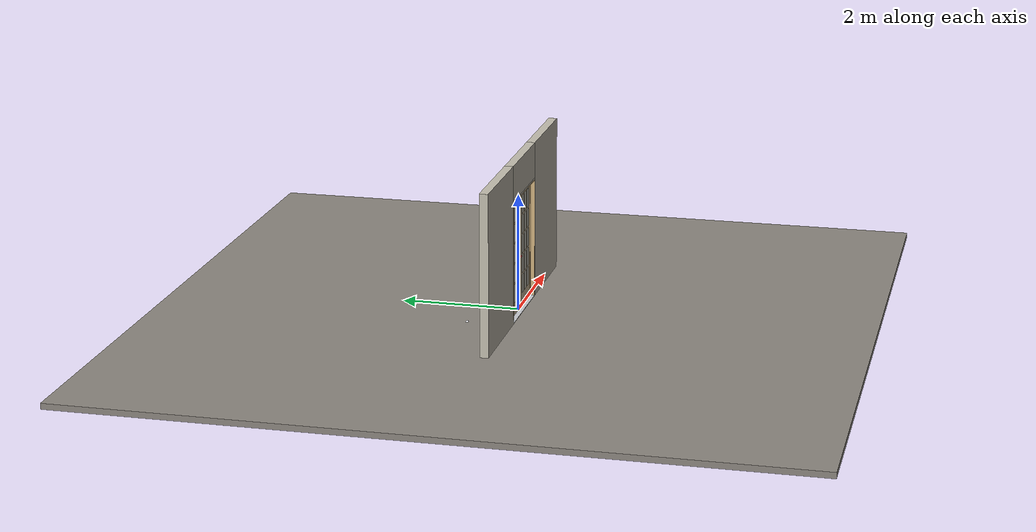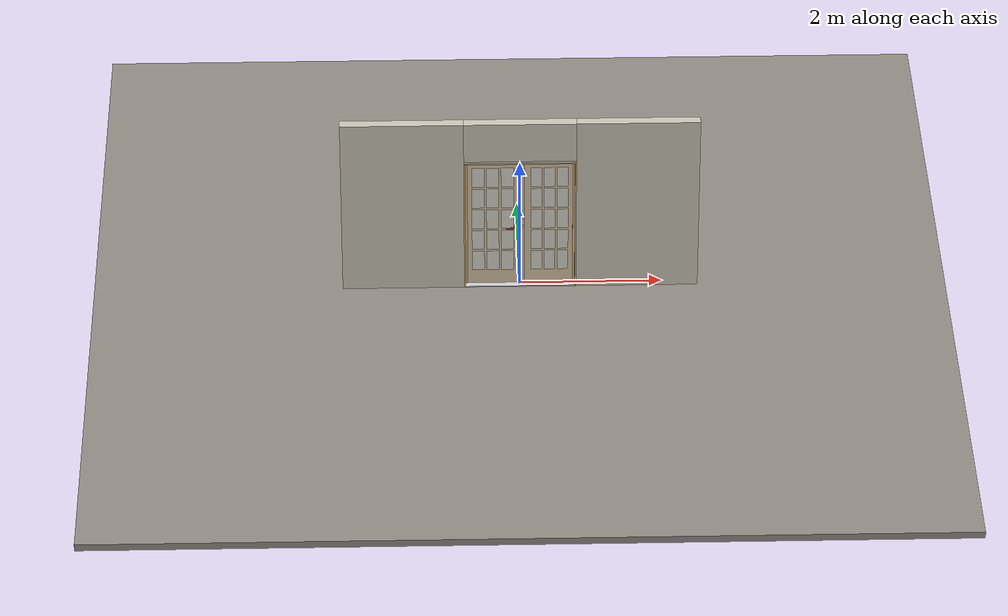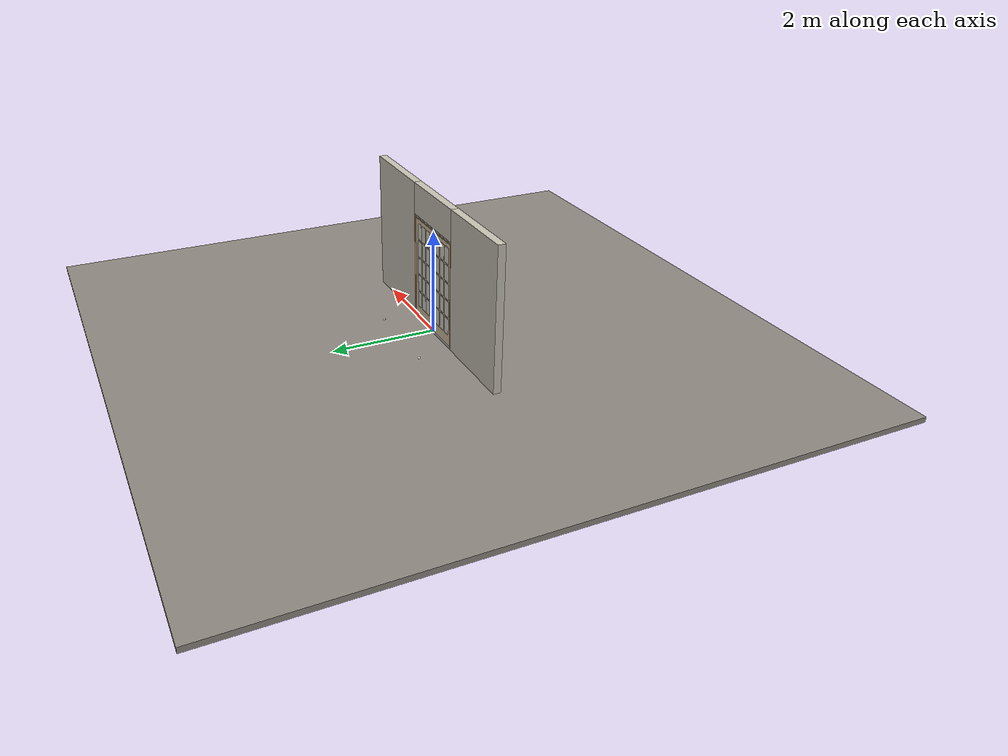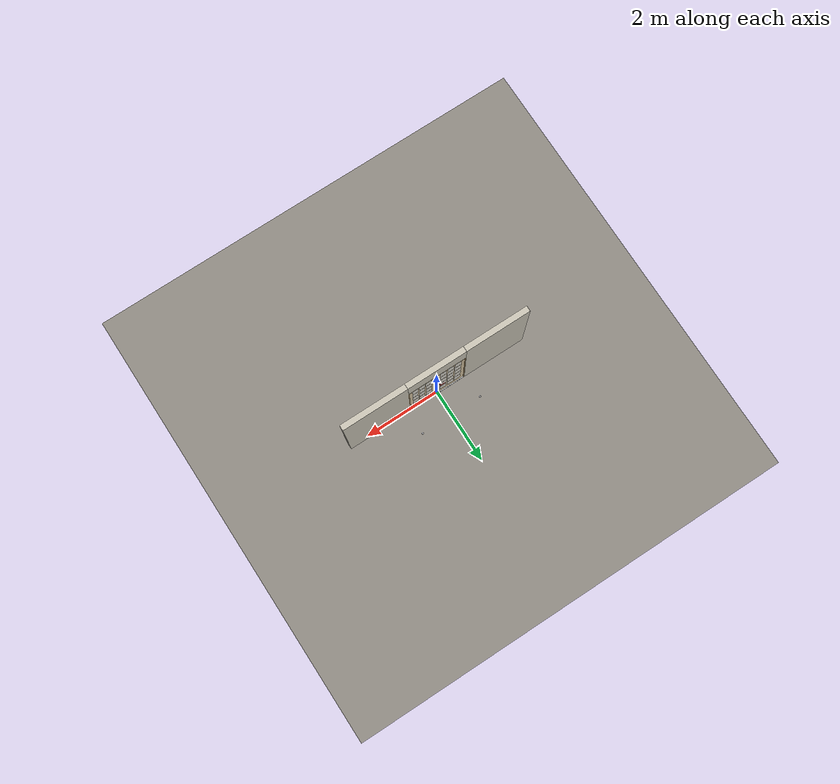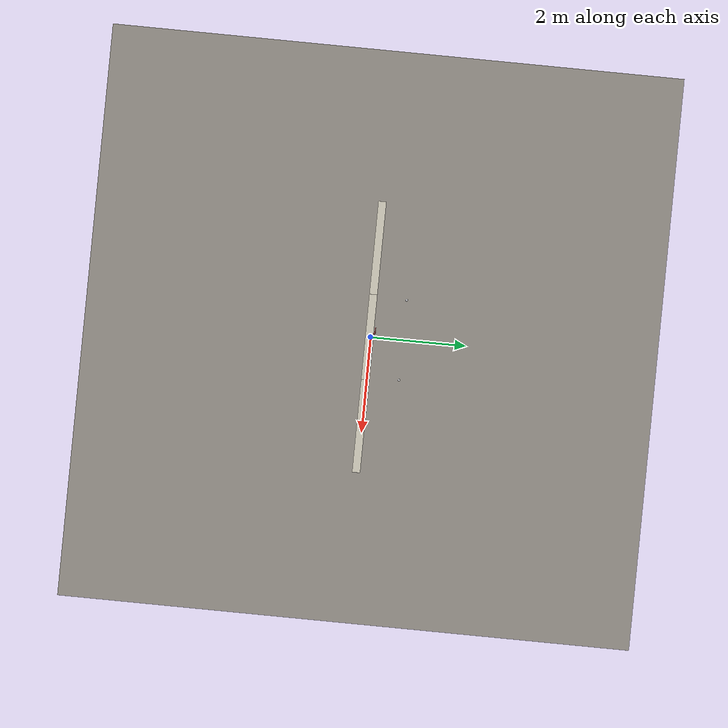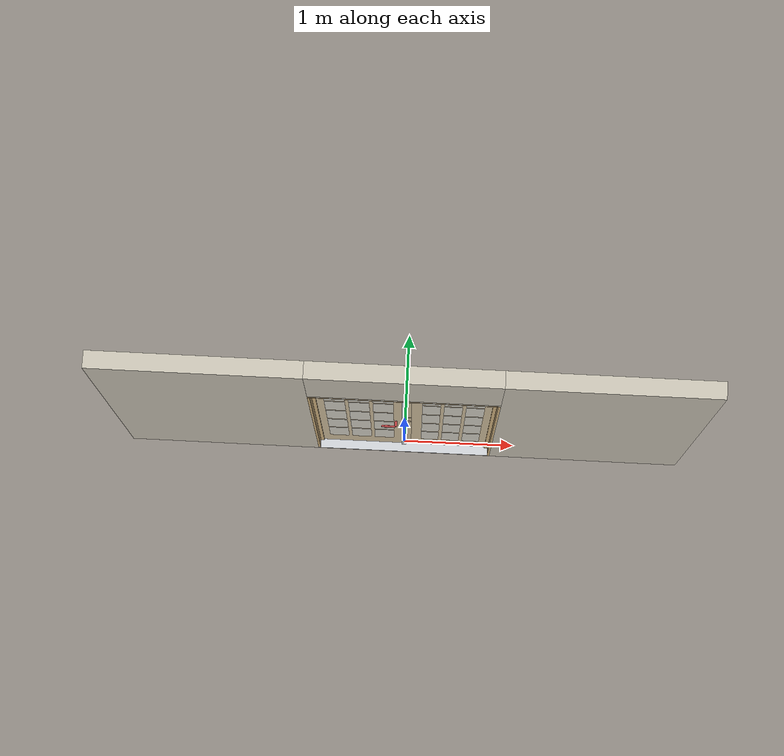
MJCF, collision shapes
<?xml version="1.0" ?>
<mujoco model="db0334_swing_double_full">
  <compiler angle="radian" meshdir="../../hardware" texturedir="../../textures" autolimits="true" inertiafromgeom="false"/>
  <option timestep="0.002" integrator="implicitfast" cone="elliptic" impratio="10" noslip_iterations="3">
    <flag multiccd="enable"/>
  </option>
  <size memory="16M"/>
  <default>
    <geom condim="4" solref="0.005 1" solimp="0.95 0.99 0.001"/>
    <joint solreflimit="0.005 1" solimplimit="0.95 0.99 0.001"/>
    <tendon solreflimit="0.005 1"/>
    <equality solref="0.002 1"/>
  </default>
  <visual>
    <headlight ambient="0.4 0.4 0.4" diffuse="0.7 0.7 0.7" specular="0.2 0.2 0.2"/>
    <quality shadowsize="4096"/>
    <map znear="0.01" zfar="60"/>
  </visual>
  <asset>
    <mesh name="cyl_face_e9e5036966" file="cyl_face_e9e5036966.obj"/>
    <mesh name="hinge_2af0f4d6ca" file="hinge_2af0f4d6ca.obj"/>
    <mesh name="hinge_jamb_c0c0a62ada" file="hinge_jamb_c0c0a62ada.obj"/>
    <mesh name="lever_9f02b544cf" file="lever_9f02b544cf.obj"/>
    <material name="mat_floor" rgba="0.55 0.53 0.5 1" specular="0.2" shininess="0.15" reflectance="0"/>
    <material name="mat_wall" rgba="0.78 0.76 0.7 1" specular="0.2" shininess="0.1" reflectance="0"/>
    <material name="mat_leaf_a" rgba="0.82 0.75 0.62 1" specular="0.2" shininess="0.64" reflectance="0"/>
    <material name="mat_glass" rgba="0.9 0.93 0.95 0.6" specular="0.2" shininess="0.5" reflectance="0.1"/>
    <material name="mat_hinge" rgba="0.65 0.66 0.68 1" specular="0.74" shininess="0.5" reflectance="0.36"/>
    <material name="mat_op_nickel_satin" rgba="0.72 0.7 0.66 1" specular="0.8" shininess="0.65" reflectance="0.4"/>
    <material name="mat_trim" rgba="0.85 0.66 0.3 1" specular="0.8" shininess="0.75" reflectance="0.4"/>
    <material name="mat_bolt" rgba="0.85 0.66 0.3 1" specular="0.8" shininess="0.75" reflectance="0.4"/>
    <material name="mat_deadbolt" rgba="0.85 0.66 0.3 1" specular="0.8" shininess="0.75" reflectance="0.4"/>
    <material name="mat_stop" rgba="0.9 0.9 0.92 1" specular="0.8" shininess="0.9" reflectance="0.4"/>
    <material name="mat_leaf_b" rgba="0.82 0.75 0.62 1" specular="0.2" shininess="0.64" reflectance="0"/>
    <material name="mat_frame" rgba="0.82 0.7 0.5 1" specular="0.2" shininess="0.45" reflectance="0"/>
    <material name="mat_threshold" rgba="0.8 0.81 0.83 1" specular="0.8" shininess="0.6" reflectance="0.4"/>
    <material name="mat_astragal" rgba="0.8 0.81 0.83 1" specular="0.8" shininess="0.6" reflectance="0.4"/>
    <texture name="skybox" type="skybox" builtin="gradient" rgb1="0.6 0.7 0.85" rgb2="0.9 0.92 0.95" width="256" height="256"/>
  </asset>
  <worldbody>
    <light name="sun" pos="1.5 -2.5 4" dir="-0.3 0.5 -0.8" directional="true" diffuse="0.8 0.8 0.8" specular="0.3 0.3 0.3" castshadow="true"/>
    <light name="fill" pos="-1.5 2.5 3" dir="0.3 -0.5 -0.7" directional="true" diffuse="0.35 0.35 0.4" castshadow="false"/>
    <camera name="robot_view" pos="0 -2.572687 1.734312" xyaxes="1 0 0 0 0.26963 0.962964" fovy="52"/>
    <camera name="far_view" pos="0 2.511687 1.734312" xyaxes="-1 0 0 0 -0.26963 0.962964" fovy="52"/>
    <camera name="iso" pos="-1.932062 -2.165938 2.141063" xyaxes="0.741536 -0.670913 0 0.242917 0.268487 0.932151" fovy="46"/>
    <camera name="detail_handle" pos="0.0085 -0.877 1.245" xyaxes="0.97561 0.219512 0 -0.070934 0.315262 0.94635" fovy="38"/>
    <geom name="floor" type="box" size="6 6 0.05" pos="0 0 -0.05" material="mat_floor" group="0" contype="1" conaffinity="1" friction="0.8 0.005 0.0001" density="2400"/>
    <geom name="wall_left" type="box" size="0.85725 0.0725 1.35" pos="-1.64275 -0.0305 1.35" material="mat_wall" group="0" contype="1" conaffinity="1" friction="0.6 0.005 0.0001" density="800"/>
    <geom name="wall_right" type="box" size="0.85725 0.0725 1.35" pos="1.64275 -0.0305 1.35" material="mat_wall" group="0" contype="1" conaffinity="1" friction="0.6 0.005 0.0001" density="800"/>
    <geom name="wall_header" type="box" size="0.7855 0.0725 0.303" pos="0 -0.0305 2.397" material="mat_wall" group="0" contype="1" conaffinity="1" friction="0.6 0.005 0.0001" density="800"/>
    <geom name="hinge_0_jamb" type="mesh" mesh="hinge_jamb_c0c0a62ada" pos="-0.7635 0.029 0.267" quat="0 1 0 0" material="mat_hinge" group="1" contype="0" conaffinity="0" density="7850"/>
    <geom name="hinge_1_jamb" type="mesh" mesh="hinge_jamb_c0c0a62ada" pos="-0.7635 0.029 1.029" quat="0 1 0 0" material="mat_hinge" group="1" contype="0" conaffinity="0" density="7850"/>
    <geom name="hinge_2_jamb" type="mesh" mesh="hinge_jamb_c0c0a62ada" pos="-0.7635 0.029 1.861" quat="0 1 0 0" material="mat_hinge" group="1" contype="0" conaffinity="0" density="7850"/>
    <geom name="floor_stop_dome" type="sphere" size="0.025" pos="-0.839875 0.672492 0" material="mat_stop" group="0" contype="1" conaffinity="1" friction="0.6 0.005 0.0001" density="7000"/>
    <geom name="hinge_0_jamb_2" type="mesh" mesh="hinge_jamb_c0c0a62ada" pos="0.7635 0.029 0.267" quat="0 0 0 1" material="mat_hinge" group="1" contype="0" conaffinity="0" density="7850"/>
    <geom name="hinge_1_jamb_2" type="mesh" mesh="hinge_jamb_c0c0a62ada" pos="0.7635 0.029 1.029" quat="0 0 0 1" material="mat_hinge" group="1" contype="0" conaffinity="0" density="7850"/>
    <geom name="hinge_2_jamb_2" type="mesh" mesh="hinge_jamb_c0c0a62ada" pos="0.7635 0.029 1.861" quat="0 0 0 1" material="mat_hinge" group="1" contype="0" conaffinity="0" density="7850"/>
    <geom name="floor_stop_dome_2" type="sphere" size="0.025" pos="0.839875 0.672492 0" material="mat_stop" group="0" contype="1" conaffinity="1" friction="0.6 0.005 0.0001" density="7000"/>
    <geom name="jamb_l" type="box" size="0.0095 0.0725 1.0225" pos="-0.776 -0.0305 1.0225" material="mat_frame" group="0" contype="1" conaffinity="1" friction="0.6 0.005 0.0001" density="300"/>
    <geom name="jamb_r" type="box" size="0.0095 0.0725 1.0225" pos="0.776 -0.0305 1.0225" material="mat_frame" group="0" contype="1" conaffinity="1" friction="0.6 0.005 0.0001" density="300"/>
    <geom name="jamb_head" type="box" size="0.7855 0.0725 0.0095" pos="0 -0.0305 2.0545" material="mat_frame" group="0" contype="1" conaffinity="1" friction="0.6 0.005 0.0001" density="300"/>
    <geom name="head_stud" type="box" size="0.7855 0.0725 0.015" pos="0 -0.0305 2.079" material="mat_wall" group="0" contype="1" conaffinity="1" friction="0.6 0.005 0.0001" density="500"/>
    <geom name="stop_l" type="box" size="0.015 0.006 1.0225" pos="-0.7515 -0.0285 1.0225" material="mat_frame" group="0" contype="1" conaffinity="1" friction="0.6 0.005 0.0001" density="300"/>
    <geom name="stop_r" type="box" size="0.015 0.006 1.0225" pos="0.7515 -0.0285 1.0225" material="mat_frame" group="0" contype="1" conaffinity="1" friction="0.6 0.005 0.0001" density="300"/>
    <geom name="stop_head" type="box" size="0.7665 0.006 0.015" pos="0 -0.0285 2.03" material="mat_frame" group="0" contype="1" conaffinity="1" friction="0.6 0.005 0.0001" density="300"/>
    <geom name="threshold" type="box" size="0.7855 0.0725 0.0065" pos="0 -0.0305 0.0065" material="mat_threshold" group="0" contype="1" conaffinity="1" friction="0.5 0.005 0.0001" density="2700"/>
    <site name="approach_point" pos="0 -1.5 0" quat="1 0 0 0" size="0.05" rgba="0.2 0.9 0.2 0.5" group="4"/>
    <site name="goal_point" pos="0 1.5 0" quat="1 0 0 0" size="0.05" rgba="0.2 0.9 0.2 0.5" group="4"/>
    <site name="door_plane_center" pos="0 0 1.0225" quat="1 0 0 0" size="0.02" rgba="0.2 0.9 0.2 0.5" group="4"/>
    <site name="approach_point_2" pos="0 -1.5 0" quat="1 0 0 0" size="0.05" rgba="0.2 0.9 0.2 0.5" group="4"/>
    <site name="goal_point_2" pos="0 1.5 0" quat="1 0 0 0" size="0.05" rgba="0.2 0.9 0.2 0.5" group="4"/>
    <site name="door_plane_center_2" pos="0 0 1.0225" quat="1 0 0 0" size="0.02" rgba="0.2 0.9 0.2 0.5" group="4"/>
    <site name="approach_point_3" pos="0 -1.5 0" quat="1 0 0 0" size="0.05" rgba="0.2 0.9 0.2 0.5" group="4"/>
    <site name="goal_point_3" pos="0 1.5 0" quat="1 0 0 0" size="0.05" rgba="0.2 0.9 0.2 0.5" group="4"/>
    <site name="door_plane_center_3" pos="0 0 1.0225" quat="1 0 0 0" size="0.02" rgba="0.2 0.9 0.2 0.5" group="4"/>
    <body name="leaf_a" pos="-0.7665 0 0">
      <inertial pos="0.378562 0.000171 1.029874" mass="37.28628" quat="0.500693 0.499208 -0.500794 0.499302" diaginertia="1.889558407 12.720679084 14.597563296"/>
      <joint name="leaf_a_hinge" type="hinge" axis="0 0 1" pos="0.003 0.029 0" limited="true" range="0 1.658063" damping="0.173726" frictionloss="0.467191" armature="0.02"/>
      <geom name="leaf_a_slab" type="box" size="0.381 0.022 1.012" pos="0.384 0 1.029" material="mat_leaf_a" group="0" contype="1" conaffinity="1" friction="0.4 0.005 0.0001" density="1"/>
      <geom name="leaf_a_glass_0" type="box" size="0.087 0.0228 0.158016" pos="0.18 0 0.397656" material="mat_glass" group="1" contype="0" conaffinity="0" density="1"/>
      <geom name="leaf_a_glass_1" type="box" size="0.087 0.0228 0.158016" pos="0.384 0 0.397656" material="mat_glass" group="1" contype="0" conaffinity="0" density="1"/>
      <geom name="leaf_a_glass_2" type="box" size="0.087 0.0228 0.158016" pos="0.588 0 0.397656" material="mat_glass" group="1" contype="0" conaffinity="0" density="1"/>
      <geom name="leaf_a_glass_3" type="box" size="0.087 0.0228 0.158016" pos="0.18 0 0.743688" material="mat_glass" group="1" contype="0" conaffinity="0" density="1"/>
      <geom name="leaf_a_glass_4" type="box" size="0.087 0.0228 0.158016" pos="0.384 0 0.743688" material="mat_glass" group="1" contype="0" conaffinity="0" density="1"/>
      <geom name="leaf_a_glass_5" type="box" size="0.087 0.0228 0.158016" pos="0.588 0 0.743688" material="mat_glass" group="1" contype="0" conaffinity="0" density="1"/>
      <geom name="leaf_a_glass_6" type="box" size="0.087 0.0228 0.158016" pos="0.18 0 1.08972" material="mat_glass" group="1" contype="0" conaffinity="0" density="1"/>
      <geom name="leaf_a_glass_7" type="box" size="0.087 0.0228 0.158016" pos="0.384 0 1.08972" material="mat_glass" group="1" contype="0" conaffinity="0" density="1"/>
      <geom name="leaf_a_glass_8" type="box" size="0.087 0.0228 0.158016" pos="0.588 0 1.08972" material="mat_glass" group="1" contype="0" conaffinity="0" density="1"/>
      <geom name="leaf_a_glass_9" type="box" size="0.087 0.0228 0.158016" pos="0.18 0 1.435752" material="mat_glass" group="1" contype="0" conaffinity="0" density="1"/>
      <geom name="leaf_a_glass_10" type="box" size="0.087 0.0228 0.158016" pos="0.384 0 1.435752" material="mat_glass" group="1" contype="0" conaffinity="0" density="1"/>
      <geom name="leaf_a_glass_11" type="box" size="0.087 0.0228 0.158016" pos="0.588 0 1.435752" material="mat_glass" group="1" contype="0" conaffinity="0" density="1"/>
      <geom name="leaf_a_glass_12" type="box" size="0.087 0.0228 0.158016" pos="0.18 0 1.781784" material="mat_glass" group="1" contype="0" conaffinity="0" density="1"/>
      <geom name="leaf_a_glass_13" type="box" size="0.087 0.0228 0.158016" pos="0.384 0 1.781784" material="mat_glass" group="1" contype="0" conaffinity="0" density="1"/>
      <geom name="leaf_a_glass_14" type="box" size="0.087 0.0228 0.158016" pos="0.588 0 1.781784" material="mat_glass" group="1" contype="0" conaffinity="0" density="1"/>
      <geom name="hinge_0" type="mesh" mesh="hinge_2af0f4d6ca" pos="0.003 0.029 0.267" quat="0 1 0 0" material="mat_hinge" group="1" contype="0" conaffinity="0" density="7850"/>
      <geom name="hinge_1" type="mesh" mesh="hinge_2af0f4d6ca" pos="0.003 0.029 1.029" quat="0 1 0 0" material="mat_hinge" group="1" contype="0" conaffinity="0" density="7850"/>
      <geom name="hinge_2" type="mesh" mesh="hinge_2af0f4d6ca" pos="0.003 0.029 1.861" quat="0 1 0 0" material="mat_hinge" group="1" contype="0" conaffinity="0" density="7850"/>
      <geom name="leaf_a_latch_bolt_faceplate" type="box" size="0.0006 0.01235 0.0267" pos="0.7644 0 0.965" material="mat_bolt" group="1" contype="0" conaffinity="0" density="8500"/>
      <geom name="leaf_a_deadbolt_faceplate" type="box" size="0.0006 0.014 0.0245" pos="0.7644 0 1.105" material="mat_deadbolt" group="1" contype="0" conaffinity="0" density="8500"/>
      <geom name="leaf_a_deadbolt_cylinder_face" type="mesh" mesh="cyl_face_e9e5036966" pos="0.7 -0.022 1.105" quat="0.707107 0.707107 0 0" material="mat_deadbolt" group="1" contype="0" conaffinity="0" density="7100"/>
      <site name="leaf_a_edge_mid" pos="0.765 0 1.012" quat="1 0 0 0" size="0.02" rgba="0.2 0.9 0.2 0.5" group="4"/>
      <body name="leaf_a_handle" pos="0.695 0 0.965">
        <inertial pos="-0.028544 0 0" mass="0.978187" quat="0 0.707107 0.707107 0" diaginertia="0.001772047 0.003604455 0.005198299"/>
        <joint name="leaf_a_handle_hinge" type="hinge" axis="0 -1 0" limited="true" range="0 0.96" damping="0.245624" frictionloss="0.048" stiffness="1.2" springref="-0.458333" armature="0.01"/>
        <geom name="leaf_a_handle_spindle" type="cylinder" size="0.006 0.03" pos="0 0 0" quat="0.707107 -0.707107 0 0" material="mat_op_nickel_satin" group="1" contype="0" conaffinity="0" density="7850"/>
        <geom name="leaf_a_handle_lever_n" type="mesh" mesh="lever_9f02b544cf" pos="0 -0.022 0" quat="0.707107 0.707107 0 0" material="mat_op_nickel_satin" group="1" contype="0" conaffinity="0" density="3000"/>
        <geom name="leaf_a_handle_lever_col_n" type="capsule" size="0.0095 0.053" pos="-0.0625 -0.077 0" quat="0.707107 0 -0.707107 0" material="mat_op_nickel_satin" group="3" contype="1" conaffinity="1" rgba="0.8 0.3 0.3 0.25" friction="0.7 0.01 0.0001" density="3000"/>
        <geom name="leaf_a_handle_hub_col_n" type="cylinder" size="0.012 0.022" pos="0 -0.052 0" quat="0.707107 -0.707107 0 0" material="mat_op_nickel_satin" group="3" contype="1" conaffinity="1" rgba="0.8 0.3 0.3 0.25" friction="0.6 0.005 0.0001" density="3000"/>
        <geom name="leaf_a_handle_lever_p" type="mesh" mesh="lever_9f02b544cf" pos="0 0.022 0" quat="-0.707107 0.707107 0 0" material="mat_op_nickel_satin" group="1" contype="0" conaffinity="0" density="3000"/>
        <geom name="leaf_a_handle_lever_col_p" type="capsule" size="0.0095 0.053" pos="-0.0625 0.077 0" quat="0.707107 0 -0.707107 0" material="mat_op_nickel_satin" group="3" contype="1" conaffinity="1" rgba="0.8 0.3 0.3 0.25" friction="0.7 0.01 0.0001" density="3000"/>
        <geom name="leaf_a_handle_hub_col_p" type="cylinder" size="0.012 0.022" pos="0 0.052 0" quat="0.707107 -0.707107 0 0" material="mat_op_nickel_satin" group="3" contype="1" conaffinity="1" rgba="0.8 0.3 0.3 0.25" friction="0.6 0.005 0.0001" density="3000"/>
        <site name="leaf_a_handle_grip_n" pos="-0.1 -0.077 0" quat="1 0 0 0" size="0.012" rgba="0.2 0.9 0.2 0.5" group="4"/>
        <site name="leaf_a_handle_grip_p" pos="-0.1 0.077 0" quat="1 0 0 0" size="0.012" rgba="0.2 0.9 0.2 0.5" group="4"/>
      </body>
      <body name="leaf_a_latch_bolt" pos="0.765 0 0.965">
        <inertial pos="-0.00865 0 0" mass="0.041419" quat="0.92388 -0.382683 0 0" diaginertia="0.000000798 0.000005598 0.000005598"/>
        <joint name="leaf_a_latch_bolt_slide" type="slide" axis="-1 0 0" limited="true" range="0 0.0127" damping="2" frictionloss="0.3" stiffness="300" springref="-0.008333" armature="0.1"/>
        <geom name="leaf_a_latch_bolt_capsule" type="capsule" size="0.00635 0.015" pos="-0.00865 0 0" quat="0.707107 0 0.707107 0" material="mat_bolt" group="0" contype="1" conaffinity="1" friction="0.2 0.005 0.0001" density="8500"/>
      </body>
      <body name="leaf_a_deadbolt" pos="0.765 0 1.105">
        <inertial pos="-0.0023 0 0" mass="0.18836" quat="0 0 0.707107 0.707107" diaginertia="0.000013829 0.000052194 0.000057986"/>
        <geom name="leaf_a_deadbolt_box" type="box" size="0.0277 0.008 0.0125" pos="-0.0023 0 0" material="mat_deadbolt" group="0" contype="1" conaffinity="1" friction="0.3 0.005 0.0001" density="8500"/>
      </body>
    </body>
    <body name="leaf_b" pos="0.7665 0 0">
      <inertial pos="-0.399766 -0.003469 1.027847" mass="36.218449" quat="0.494104 0.507136 -0.492715 0.505871" diaginertia="2.061281725 12.371075107 14.417105826"/>
      <joint name="leaf_b_hinge" type="hinge" axis="0 0 -1" pos="-0.003 0.029 0" limited="true" range="0 0.001" damping="0.173726" frictionloss="0.467191" armature="0.02"/>
      <geom name="leaf_b_edge_965_wall_n" type="box" size="0.03 0.007075 0.0167" pos="-0.735 -0.014925 0.965" material="mat_leaf_b" group="0" contype="1" conaffinity="1" friction="0.6 0.005 0.0001" density="1"/>
      <geom name="leaf_b_edge_965_wall_p" type="box" size="0.03 0.008 0.0167" pos="-0.735 0.01585 0.965" material="mat_leaf_b" group="0" contype="1" conaffinity="1" friction="0.6 0.005 0.0001" density="1"/>
      <geom name="leaf_b_edge_965_ramp" type="box" size="0.03 0.01649 0.0167" pos="-0.730861 0.026388 0.965" quat="0.977148 0 0 -0.212558" material="mat_leaf_b" group="0" contype="1" conaffinity="1" friction="0.12 0.005 0.0001" density="1"/>
      <geom name="leaf_b_edge_965_back" type="box" size="0.02165 0.00785 0.0167" pos="-0.72665 0 0.965" material="mat_leaf_b" group="0" contype="1" conaffinity="1" friction="0.6 0.005 0.0001" density="1"/>
      <geom name="leaf_b_edge_1105_wall_n" type="box" size="0.03 0.00625 0.0155" pos="-0.735 -0.01575 1.105" material="mat_leaf_b" group="0" contype="1" conaffinity="1" friction="0.6 0.005 0.0001" density="1"/>
      <geom name="leaf_b_edge_1105_wall_p" type="box" size="0.03 0.00625 0.0155" pos="-0.735 0.01575 1.105" material="mat_leaf_b" group="0" contype="1" conaffinity="1" friction="0.6 0.005 0.0001" density="1"/>
      <geom name="leaf_b_edge_1105_back" type="box" size="0.0153 0.0095 0.0155" pos="-0.7203 0 1.105" material="mat_leaf_b" group="0" contype="1" conaffinity="1" friction="0.6 0.005 0.0001" density="1"/>
      <geom name="leaf_b_edge_seg_0" type="box" size="0.03 0.022 0.46565" pos="-0.735 0 0.48265" material="mat_leaf_b" group="0" contype="1" conaffinity="1" friction="0.6 0.005 0.0001" density="1"/>
      <geom name="leaf_b_edge_seg_1" type="box" size="0.03 0.022 0.0539" pos="-0.735 0 1.0356" material="mat_leaf_b" group="0" contype="1" conaffinity="1" friction="0.6 0.005 0.0001" density="1"/>
      <geom name="leaf_b_edge_seg_2" type="box" size="0.03 0.022 0.46025" pos="-0.735 0 1.58075" material="mat_leaf_b" group="0" contype="1" conaffinity="1" friction="0.6 0.005 0.0001" density="1"/>
      <geom name="leaf_b_slab" type="box" size="0.351 0.022 1.012" pos="-0.354 0 1.029" material="mat_leaf_b" group="0" contype="1" conaffinity="1" friction="0.4 0.005 0.0001" density="1"/>
      <geom name="leaf_b_glass_0" type="box" size="0.077 0.0228 0.158016" pos="-0.17 0 0.397656" material="mat_glass" group="1" contype="0" conaffinity="0" density="1"/>
      <geom name="leaf_b_glass_1" type="box" size="0.077 0.0228 0.158016" pos="-0.354 0 0.397656" material="mat_glass" group="1" contype="0" conaffinity="0" density="1"/>
      <geom name="leaf_b_glass_2" type="box" size="0.077 0.0228 0.158016" pos="-0.538 0 0.397656" material="mat_glass" group="1" contype="0" conaffinity="0" density="1"/>
      <geom name="leaf_b_glass_3" type="box" size="0.077 0.0228 0.158016" pos="-0.17 0 0.743688" material="mat_glass" group="1" contype="0" conaffinity="0" density="1"/>
      <geom name="leaf_b_glass_4" type="box" size="0.077 0.0228 0.158016" pos="-0.354 0 0.743688" material="mat_glass" group="1" contype="0" conaffinity="0" density="1"/>
      <geom name="leaf_b_glass_5" type="box" size="0.077 0.0228 0.158016" pos="-0.538 0 0.743688" material="mat_glass" group="1" contype="0" conaffinity="0" density="1"/>
      <geom name="leaf_b_glass_6" type="box" size="0.077 0.0228 0.158016" pos="-0.17 0 1.08972" material="mat_glass" group="1" contype="0" conaffinity="0" density="1"/>
      <geom name="leaf_b_glass_7" type="box" size="0.077 0.0228 0.158016" pos="-0.354 0 1.08972" material="mat_glass" group="1" contype="0" conaffinity="0" density="1"/>
      <geom name="leaf_b_glass_8" type="box" size="0.077 0.0228 0.158016" pos="-0.538 0 1.08972" material="mat_glass" group="1" contype="0" conaffinity="0" density="1"/>
      <geom name="leaf_b_glass_9" type="box" size="0.077 0.0228 0.158016" pos="-0.17 0 1.435752" material="mat_glass" group="1" contype="0" conaffinity="0" density="1"/>
      <geom name="leaf_b_glass_10" type="box" size="0.077 0.0228 0.158016" pos="-0.354 0 1.435752" material="mat_glass" group="1" contype="0" conaffinity="0" density="1"/>
      <geom name="leaf_b_glass_11" type="box" size="0.077 0.0228 0.158016" pos="-0.538 0 1.435752" material="mat_glass" group="1" contype="0" conaffinity="0" density="1"/>
      <geom name="leaf_b_glass_12" type="box" size="0.077 0.0228 0.158016" pos="-0.17 0 1.781784" material="mat_glass" group="1" contype="0" conaffinity="0" density="1"/>
      <geom name="leaf_b_glass_13" type="box" size="0.077 0.0228 0.158016" pos="-0.354 0 1.781784" material="mat_glass" group="1" contype="0" conaffinity="0" density="1"/>
      <geom name="leaf_b_glass_14" type="box" size="0.077 0.0228 0.158016" pos="-0.538 0 1.781784" material="mat_glass" group="1" contype="0" conaffinity="0" density="1"/>
      <geom name="hinge_0_2" type="mesh" mesh="hinge_2af0f4d6ca" pos="-0.003 0.029 0.267" quat="0 0 0 1" material="mat_hinge" group="1" contype="0" conaffinity="0" density="7850"/>
      <geom name="hinge_1_2" type="mesh" mesh="hinge_2af0f4d6ca" pos="-0.003 0.029 1.029" quat="0 0 0 1" material="mat_hinge" group="1" contype="0" conaffinity="0" density="7850"/>
      <geom name="hinge_2_2" type="mesh" mesh="hinge_2af0f4d6ca" pos="-0.003 0.029 1.861" quat="0 0 0 1" material="mat_hinge" group="1" contype="0" conaffinity="0" density="7850"/>
      <geom name="astragal" type="box" size="0.02 0.008 0.996" pos="-0.769 -0.03 1.016" material="mat_astragal" group="0" contype="1" conaffinity="1" friction="0.6 0.005 0.0001" density="2700"/>
      <site name="leaf_b_edge_mid" pos="-0.765 0 1.012" quat="1 0 0 0" size="0.02" rgba="0.2 0.9 0.2 0.5" group="4"/>
    </body>
  </worldbody>
  <tendon>
    <fixed name="leaf_a_latch_bolt_coupling" limited="true" range="0 10">
      <joint joint="leaf_a_latch_bolt_slide" coef="1"/>
      <joint joint="leaf_a_handle_hinge" coef="-0.013956"/>
    </fixed>
  </tendon>
  <sensor>
    <jointpos name="leaf_a_hinge_pos" joint="leaf_a_hinge"/>
    <jointvel name="leaf_a_hinge_vel" joint="leaf_a_hinge"/>
    <jointpos name="leaf_a_handle_hinge_pos" joint="leaf_a_handle_hinge"/>
    <jointvel name="leaf_a_handle_hinge_vel" joint="leaf_a_handle_hinge"/>
    <jointpos name="leaf_a_latch_bolt_slide_pos" joint="leaf_a_latch_bolt_slide"/>
    <jointvel name="leaf_a_latch_bolt_slide_vel" joint="leaf_a_latch_bolt_slide"/>
    <jointpos name="leaf_b_hinge_pos" joint="leaf_b_hinge"/>
    <jointvel name="leaf_b_hinge_vel" joint="leaf_b_hinge"/>
  </sensor>
</mujoco>
